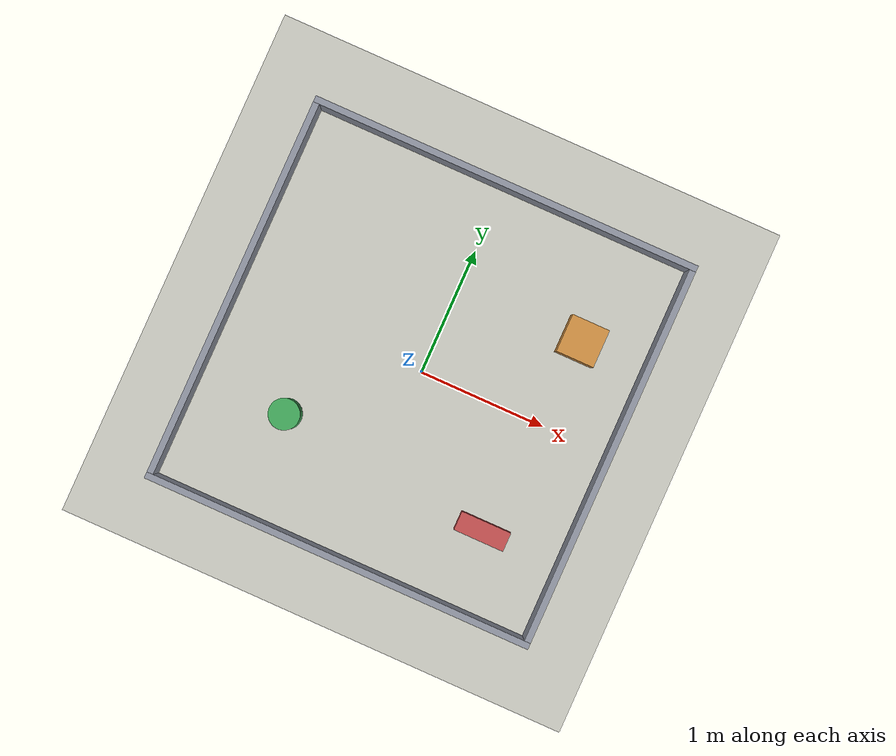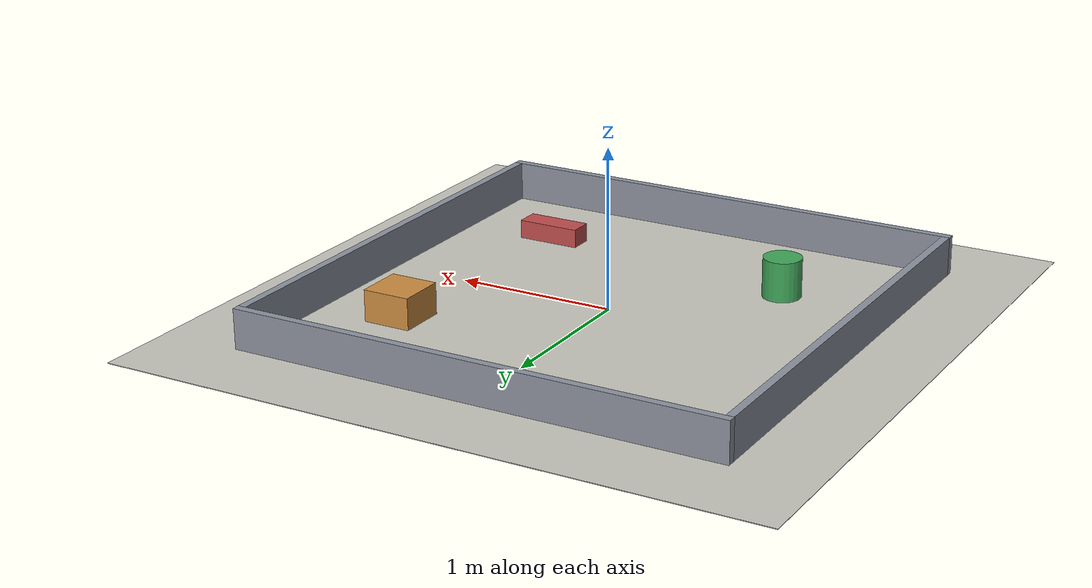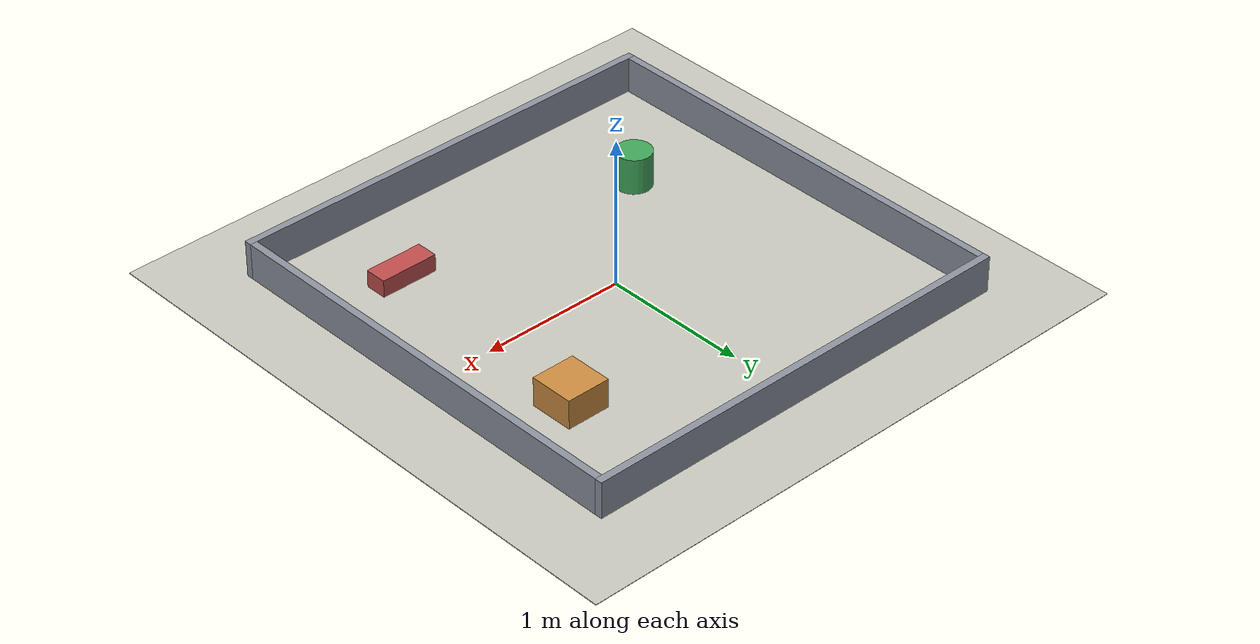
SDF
<?xml version="1.0"?>
<!-- GENERATED by yoruba_robot/arena.py. Do not edit by hand:
     edit ARENA, then: python3 -m yoruba_robot.arena > worlds/arena.sdf -->
<sdf version="1.9">
  <world name="yoruba">
    <physics name="step" type="ignored">
      <max_step_size>0.002</max_step_size>
      <real_time_factor>1.0</real_time_factor>
    </physics>
    <plugin filename="gz-sim-physics-system" name="gz::sim::systems::Physics"/>
    <plugin filename="gz-sim-user-commands-system" name="gz::sim::systems::UserCommands"/>
    <plugin filename="gz-sim-scene-broadcaster-system" name="gz::sim::systems::SceneBroadcaster"/>
    <gravity>0 0 -9.81</gravity>
    <scene><ambient>0.6 0.6 0.6 1</ambient><background>0.85 0.88 0.92 1</background><shadows>true</shadows></scene>
    <light name="sun" type="directional">
      <cast_shadows>true</cast_shadows>
      <pose>0 0 10 0 0 0</pose>
      <diffuse>0.9 0.9 0.9 1</diffuse>
      <specular>0.2 0.2 0.2 1</specular>
      <direction>-0.4 0.3 -1</direction>
    </light>
    <model name="floor">
      <static>true</static>
      <link name="link">
        <collision name="col"><geometry><plane><normal>0 0 1</normal><size>4.1 4.1</size></plane></geometry><surface><friction><ode><mu>1.0</mu><mu2>1.0</mu2></ode></friction></surface></collision>
        <visual name="vis"><geometry><plane><normal>0 0 1</normal><size>4.1 4.1</size></plane></geometry><material><ambient>0.78 0.78 0.74 1</ambient><diffuse>0.78 0.78 0.74 1</diffuse><specular>0.1 0.1 0.1 1</specular></material></visual>
      </link>
    </model>
    <model name="wall_north">
      <static>true</static>
      <pose>0 1.525 0.125 0 0 0</pose>
      <link name="link">
        <collision name="col"><geometry><box><size>3.1 0.05 0.25</size></box></geometry></collision>
        <visual name="vis"><geometry><box><size>3.1 0.05 0.25</size></box></geometry><material><ambient>0.55 0.57 0.62 1</ambient><diffuse>0.55 0.57 0.62 1</diffuse><specular>0.1 0.1 0.1 1</specular></material></visual>
      </link>
    </model>
    <model name="wall_south">
      <static>true</static>
      <pose>0 -1.525 0.125 0 0 0</pose>
      <link name="link">
        <collision name="col"><geometry><box><size>3.1 0.05 0.25</size></box></geometry></collision>
        <visual name="vis"><geometry><box><size>3.1 0.05 0.25</size></box></geometry><material><ambient>0.55 0.57 0.62 1</ambient><diffuse>0.55 0.57 0.62 1</diffuse><specular>0.1 0.1 0.1 1</specular></material></visual>
      </link>
    </model>
    <model name="wall_east">
      <static>true</static>
      <pose>1.525 0 0.125 0 0 0</pose>
      <link name="link">
        <collision name="col"><geometry><box><size>0.05 3 0.25</size></box></geometry></collision>
        <visual name="vis"><geometry><box><size>0.05 3 0.25</size></box></geometry><material><ambient>0.55 0.57 0.62 1</ambient><diffuse>0.55 0.57 0.62 1</diffuse><specular>0.1 0.1 0.1 1</specular></material></visual>
      </link>
    </model>
    <model name="wall_west">
      <static>true</static>
      <pose>-1.525 0 0.125 0 0 0</pose>
      <link name="link">
        <collision name="col"><geometry><box><size>0.05 3 0.25</size></box></geometry></collision>
        <visual name="vis"><geometry><box><size>0.05 3 0.25</size></box></geometry><material><ambient>0.55 0.57 0.62 1</ambient><diffuse>0.55 0.57 0.62 1</diffuse><specular>0.1 0.1 0.1 1</specular></material></visual>
      </link>
    </model>
    <model name="crate">
      <static>true</static>
      <pose>1 0.7 0.1 0 0 0</pose>
      <link name="link">
        <collision name="col"><geometry><box><size>0.3 0.3 0.2</size></box></geometry></collision>
        <visual name="vis"><geometry><box><size>0.3 0.3 0.2</size></box></geometry><material><ambient>0.8 0.55 0.25 1</ambient><diffuse>0.8 0.55 0.25 1</diffuse><specular>0.1 0.1 0.1 1</specular></material></visual>
      </link>
    </model>
    <model name="bin">
      <static>true</static>
      <pose>-0.8 -0.7 0.125 0 0 0</pose>
      <link name="link">
        <collision name="col"><geometry><cylinder><radius>0.12</radius><length>0.25</length></cylinder></geometry></collision>
        <visual name="vis"><geometry><cylinder><radius>0.12</radius><length>0.25</length></cylinder></geometry><material><ambient>0.25 0.65 0.35 1</ambient><diffuse>0.25 0.65 0.35 1</diffuse><specular>0.1 0.1 0.1 1</specular></material></visual>
      </link>
    </model>
    <model name="block">
      <static>true</static>
      <pose>0.9 -0.9 0.06 0 0 0</pose>
      <link name="link">
        <collision name="col"><geometry><box><size>0.4 0.15 0.12</size></box></geometry></collision>
        <visual name="vis"><geometry><box><size>0.4 0.15 0.12</size></box></geometry><material><ambient>0.75 0.3 0.3 1</ambient><diffuse>0.75 0.3 0.3 1</diffuse><specular>0.1 0.1 0.1 1</specular></material></visual>
      </link>
    </model>
  </world>
</sdf>
